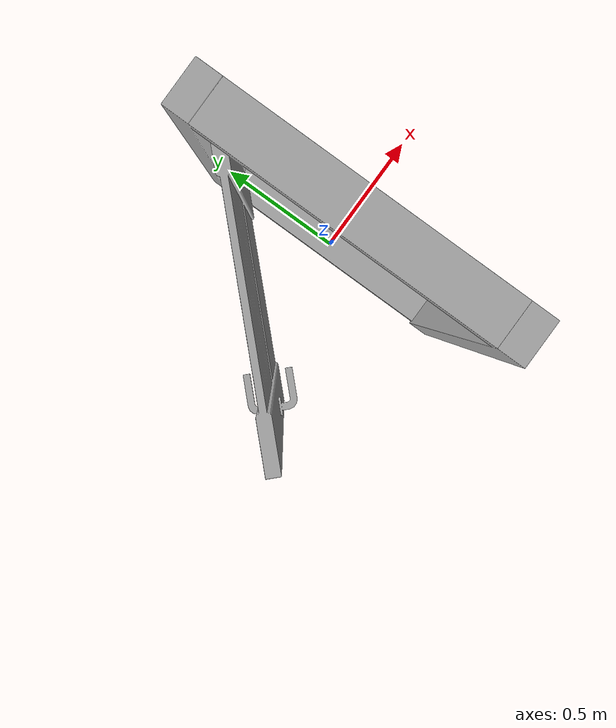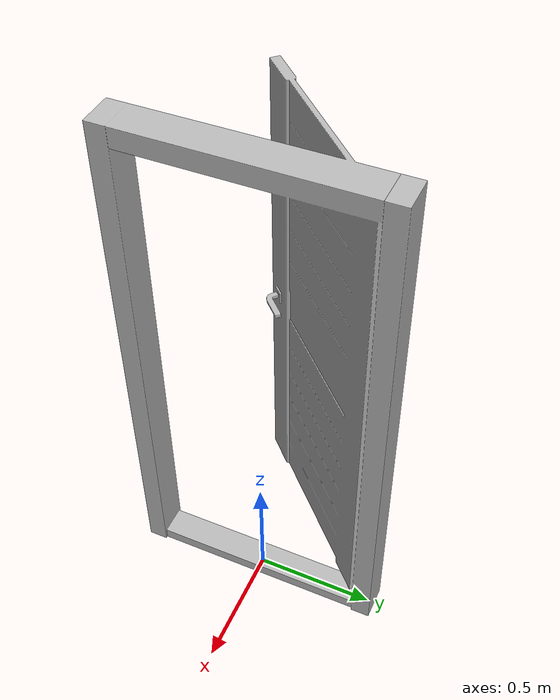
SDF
<?xml version='1.0'?>
<sdf version='1.4'>
  <model name='760'>
    <pose>0 0 0 0 0 0</pose>
    <static>true</static>
    <link name='link'>
      <collision name='collision'>
        <pose>0 0 0 0 0 0</pose>
        <geometry>
          <box>
            <size>0.719998 1.06 2</size>
          </box>
        </geometry>
      </collision>
      <visual name='visual'>
        <pose>0 0 0 0 0 0</pose>
        <geometry>
          <mesh><uri>model://760/760.dae</uri></mesh>
        </geometry>
      </visual>
    </link>
  </model>
</sdf>
